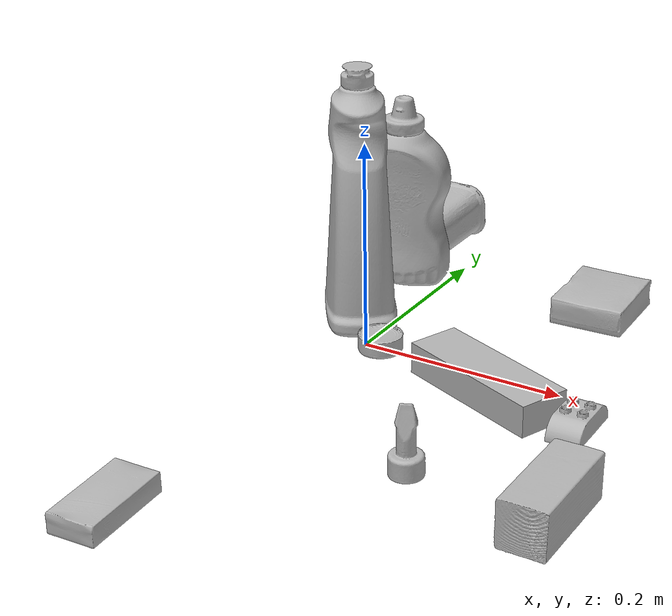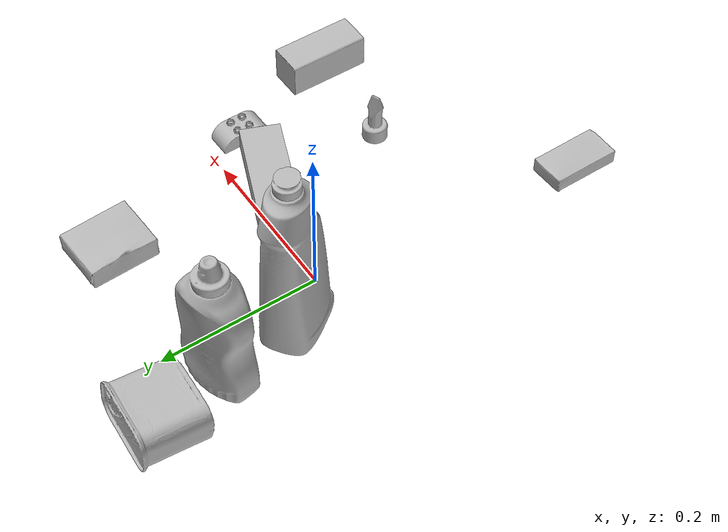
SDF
<sdf version="1.4">
  <world name="default">
    <light name="light1" type="point">
      <pose>0 0 1 0 0 0</pose>
      <diffuse>3 3 3 1</diffuse>
      <specular>3 3 3 1</specular>
    </light>
    <light name="light2" type="point">
      <pose>0 0.5 2 0 0 0</pose>
      <diffuse>1 1 1 1</diffuse>
      <specular>1 1 1 1</specular>
    </light>
    <light name="light3" type="point">
      <pose>0 0.5 2 0 0 0</pose>
      <diffuse>3 3 3 1</diffuse>
      <specular>3 3 3 1</specular>
    </light>
    <scene>
      <ambient>0.7 0.7 0.7</ambient>
    </scene>
    <model name="bottle1">
      <link name="link_bottle1">
        <collision name="default">
          <geometry>
            <mesh>
              <uri>model://bleach_cleanser/collision_meshes/collision.obj</uri>
              <scale>1.0 1.0 1.0</scale>
            </mesh>
          </geometry>
          <surface>
            <friction>
              <ode>
                <mu>0.5</mu>
                <mu2>0.5</mu2>
              </ode>
            </friction>
          <contact>
        <ode>
            <max_vel>0</max_vel>
            <min_depth>0.0001</min_depth>
            <kp>1e8</kp>
        </ode>
    </contact></surface>
        </collision>
        <visual name="default">
          <geometry>
            <mesh>
              <uri>model://bleach_cleanser/visual_meshes/visual.dae</uri>
              <scale>1.0 1.0 1.0</scale>
            </mesh>
          </geometry>
        </visual>
        <inertial>
          <mass>0.5324875712394714</mass>
          <pose>0.00012193183647468686 0.0037838825955986977 -0.024421609938144684 -0.07381669869164166 0.0004201168944593395 -0.0068750469260774934</pose>
          <inertia>
            <ixx>0.0025916947</ixx>
            <iyy>0.0024150796</iyy>
            <izz>0.00044311245</izz>
            <ixy>0</ixy>
            <ixz>0</ixz>
            <iyz>0</iyz>
          </inertia>
        </inertial>
      </link>
      <pose>-0.03623093292117119 0.04934060573577881 0.1257842481136322 -0.00020439661353079152 1.1290701192588707e-05 0.6515730391599606</pose>
    </model>
    <model name="bottle2">
      <link name="link_bottle2">
        <collision name="default">
          <geometry>
            <mesh>
              <uri>model://mustard_bottle/collision_meshes/collision.obj</uri>
              <scale>1.0 1.0 1.0</scale>
            </mesh>
          </geometry>
          <surface>
            <friction>
              <ode>
                <mu>0.5</mu>
                <mu2>0.5</mu2>
              </ode>
            </friction>
          <contact>
        <ode>
            <max_vel>0</max_vel>
            <min_depth>0.0001</min_depth>
            <kp>1e8</kp>
        </ode>
    </contact></surface>
        </collision>
        <visual name="default">
          <geometry>
            <mesh>
              <uri>model://mustard_bottle/visual_meshes/visual.dae</uri>
              <scale>1.0 1.0 1.0</scale>
            </mesh>
          </geometry>
        </visual>
        <inertial>
          <mass>0.7762566804885864</mass>
          <pose>0.0005032453336752951 -0.0001564739941386506 -0.01747579127550125 0.0004182320844136383 0.0009465775961192733 0.024853776391442105</pose>
          <inertia>
            <ixx>0.0021555587</ixx>
            <iyy>0.0018913207</iyy>
            <izz>0.00056809856</izz>
            <ixy>0</ixy>
            <ixz>0</ixz>
            <iyz>0</iyz>
          </inertia>
        </inertial>
      </link>
      <pose>-0.048158399760723114 0.1537797898054123 0.09583090245723724 -0.01205069078465861 -0.004889734431697513 -1.4052481622773982</pose>
    </model>
    <model name="toy1">
      <link name="link_toy1">
        <collision name="default">
          <geometry>
            <mesh>
              <uri>model://e_toy_airplane/collision_meshes/collision.obj</uri>
              <scale>1.0 1.0 1.0</scale>
            </mesh>
          </geometry>
          <surface>
            <friction>
              <ode>
                <mu>0.5</mu>
                <mu2>0.5</mu2>
              </ode>
            </friction>
          <contact>
        <ode>
            <max_vel>0</max_vel>
            <min_depth>0.0001</min_depth>
            <kp>1e8</kp>
        </ode>
    </contact></surface>
        </collision>
        <visual name="default">
          <geometry>
            <mesh>
              <uri>model://e_toy_airplane/visual_meshes/visual.dae</uri>
              <scale>1.0 1.0 1.0</scale>
            </mesh>
          </geometry>
        </visual>
        <inertial>
          <mass>0.01693064346909523</mass>
          <pose>0.00011740485206246376 -2.2482869098894298e-05 -0.011187203228473663 0.005518486263483037 0.009228306153066855 0.15041416456770357</pose>
          <inertia>
            <ixx>5.1674256e-06</ixx>
            <iyy>5.1145657e-06</iyy>
            <izz>1.5530146e-06</izz>
            <ixy>0</ixy>
            <ixz>0</ixz>
            <iyz>0</iyz>
          </inertia>
        </inertial>
      </link>
      <pose>0.1472022384405136 -0.1816169172525406 0.03321227431297302 7.083817927520239e-05 -8.828893297200718e-05 -1.334533470458842</pose>
    </model>
    <model name="toy2">
      <link name="link_toy2">
        <collision name="default">
          <geometry>
            <mesh>
              <uri>model://a_lego_duplo/collision_meshes/collision.obj</uri>
              <scale>1.0 1.0 1.0</scale>
            </mesh>
          </geometry>
          <surface>
            <friction>
              <ode>
                <mu>0.5</mu>
                <mu2>0.5</mu2>
              </ode>
            </friction>
          <contact>
        <ode>
            <max_vel>0</max_vel>
            <min_depth>0.0001</min_depth>
            <kp>1e8</kp>
        </ode>
    </contact></surface>
        </collision>
        <visual name="default">
          <geometry>
            <mesh>
              <uri>model://a_lego_duplo/visual_meshes/visual.dae</uri>
              <scale>1.0 1.0 1.0</scale>
            </mesh>
          </geometry>
        </visual>
        <inertial>
          <mass>0.026311658322811127</mass>
          <pose>-0.000113377594971098 0.00018517566786613315 0.0003692609607242048 -0.014117022075399962 -0.00012566465015892618 6.142856652531641e-05</pose>
          <inertia>
            <ixx>3.3733654e-06</ixx>
            <iyy>7.557078e-06</iyy>
            <izz>9.361117e-06</izz>
            <ixy>0</ixy>
            <ixz>0</ixz>
            <iyz>0</iyz>
          </inertia>
        </inertial>
      </link>
      <pose>0.23687879741191864 -0.04607357084751129 0.012111996300518513 3.423967200561823e-07 -3.3085039155211234e-07 -1.5477186544602526</pose>
    </model>
    <model name="can1">
      <link name="link_can1">
        <collision name="default">
          <geometry>
            <mesh>
              <uri>model://tuna_fish_can/collision_meshes/collision.obj</uri>
              <scale>0.5 0.5 0.5</scale>
            </mesh>
          </geometry>
          <surface>
            <friction>
              <ode>
                <mu>0.5</mu>
                <mu2>0.5</mu2>
              </ode>
            </friction>
          <contact>
        <ode>
            <max_vel>0</max_vel>
            <min_depth>0.0001</min_depth>
            <kp>1e8</kp>
        </ode>
    </contact></surface>
        </collision>
        <visual name="default">
          <geometry>
            <mesh>
              <uri>model://tuna_fish_can/visual_meshes/visual.dae</uri>
              <scale>0.5 0.5 0.5</scale>
            </mesh>
          </geometry>
        </visual>
        <inertial>
          <mass>0.025987863540649414</mass>
          <pose>-2.0361601855256595e-05 -7.256298886204604e-06 -0.0005269025568850338 -0.0017944787689317097 0.0001716279666079131 0.24054509142506303</pose>
          <inertia>
            <ixx>3.5135977e-06</ixx>
            <iyy>3.4989534e-06</iyy>
            <izz>6.0122675e-06</izz>
            <ixy>0</ixy>
            <ixz>0</ixz>
            <iyz>0</iyz>
          </inertia>
        </inertial>
      </link>
      <pose>0.016750920563936234 -0.0016015215078368783 0.008520000614225864 7.816324146958253e-08 3.894488132215556e-07 -0.31056095422682584</pose>
    </model>
    <model name="can2">
      <link name="link_can2">
        <collision name="default">
          <geometry>
            <mesh>
              <uri>model://potted_meat_can/collision_meshes/collision.obj</uri>
              <scale>1.0 1.0 1.0</scale>
            </mesh>
          </geometry>
          <surface>
            <friction>
              <ode>
                <mu>0.5</mu>
                <mu2>0.5</mu2>
              </ode>
            </friction>
          <contact>
        <ode>
            <max_vel>0</max_vel>
            <min_depth>0.0001</min_depth>
            <kp>1e8</kp>
        </ode>
    </contact></surface>
        </collision>
        <visual name="default">
          <geometry>
            <mesh>
              <uri>model://potted_meat_can/visual_meshes/visual.dae</uri>
              <scale>1.0 1.0 1.0</scale>
            </mesh>
          </geometry>
        </visual>
        <inertial>
          <mass>0.2732236087322235</mass>
          <pose>0.00022888141393195838 -5.989111741655506e-05 -0.0006367441383190453 -0.028093326615163196 -0.007232604646238421 0.015406262399643026</pose>
          <inertia>
            <ixx>0.0003514736</ixx>
            <iyy>0.00021354685</iyy>
            <izz>0.00025563012</izz>
            <ixy>0</ixy>
            <ixz>0</ixz>
            <iyz>0</iyz>
          </inertia>
        </inertial>
      </link>
      <pose>-0.07048416137695312 0.24077284336090088 0.028031298890709877 -0.6260749674474453 1.5144520549923526 0.8899440602118377</pose>
    </model>
    <model name="box1">
      <link name="link_box1">
        <collision name="default">
          <geometry>
            <mesh>
              <uri>model://gelatin_box/collision_meshes/collision.obj</uri>
              <scale>1.0 1.0 1.0</scale>
            </mesh>
          </geometry>
          <surface>
            <friction>
              <ode>
                <mu>0.5</mu>
                <mu2>0.5</mu2>
              </ode>
            </friction>
          <contact>
        <ode>
            <max_vel>0</max_vel>
            <min_depth>0.0001</min_depth>
            <kp>1e8</kp>
        </ode>
    </contact></surface>
        </collision>
        <visual name="default">
          <geometry>
            <mesh>
              <uri>model://gelatin_box/visual_meshes/visual.dae</uri>
              <scale>1.0 1.0 1.0</scale>
            </mesh>
          </geometry>
        </visual>
        <inertial>
          <mass>0.14974145591259003</mass>
          <pose>0.0004319618456065655 0.00011156871914863586 -0.0003640321083366871 -0.0010503719798216618 -0.004755819622564704 0.01644055760929568</pose>
          <inertia>
            <ixx>0.00010570526</ixx>
            <iyy>7.550471e-05</iyy>
            <izz>0.00016090693</izz>
            <ixy>0</ixy>
            <ixz>0</ixz>
            <iyz>0</iyz>
          </inertia>
        </inertial>
      </link>
      <pose>0.16442470252513885 0.17182911932468414 0.01516831386834383 0.0055963445491371885 -0.007303308411876089 -3.1028593774737048</pose>
    </model>
    <model name="box2">
      <link name="link_box2">
        <collision name="default">
          <geometry>
            <mesh>
              <uri>model://sugar_box/collision_meshes/collision.obj</uri>
              <scale>0.5 0.5 0.5</scale>
            </mesh>
          </geometry>
          <surface>
            <friction>
              <ode>
                <mu>0.5</mu>
                <mu2>0.5</mu2>
              </ode>
            </friction>
          <contact>
        <ode>
            <max_vel>0</max_vel>
            <min_depth>0.0001</min_depth>
            <kp>1e8</kp>
        </ode>
    </contact></surface>
        </collision>
        <visual name="default">
          <geometry>
            <mesh>
              <uri>model://sugar_box/visual_meshes/visual.dae</uri>
              <scale>0.5 0.5 0.5</scale>
            </mesh>
          </geometry>
        </visual>
        <inertial>
          <mass>0.07143953442573547</mass>
          <pose>0.0005171863595023751 1.924554817378521e-05 -0.00018182402709499002 -0.0004046263588767038 0.0010506634057764815 0.0026153785560837986</pose>
          <inertia>
            <ixx>1.4880804e-05</ixx>
            <iyy>4.8097805e-05</iyy>
            <izz>5.757883e-05</izz>
            <ixy>0</ixy>
            <ixz>0</ixz>
            <iyz>0</iyz>
          </inertia>
        </inertial>
      </link>
      <pose>-0.026304861530661583 -0.35010069608688354 0.011399311944842339 0.0007751189383029178 -0.023432537132467596 1.598877637946998</pose>
    </model>
    <model name="box3">
      <link name="link_box3">
        <collision name="default">
          <geometry>
            <mesh>
              <uri>model://jenga/collision_meshes/collision.obj</uri>
              <scale>1.0 1.0 1.0</scale>
            </mesh>
          </geometry>
          <surface>
            <friction>
              <ode>
                <mu>0.5</mu>
                <mu2>0.5</mu2>
              </ode>
            </friction>
          <contact>
        <ode>
            <max_vel>0</max_vel>
            <min_depth>0.0001</min_depth>
            <kp>1e8</kp>
        </ode>
    </contact></surface>
        </collision>
        <visual name="default">
          <geometry>
            <mesh>
              <uri>model://jenga/visual_meshes/visual.dae</uri>
              <scale>1.0 1.0 1.0</scale>
            </mesh>
          </geometry>
        </visual>
        <inertial>
          <mass>0.2564851939678192</mass>
          <pose>-2.502855807051674e-07 -0.00010250010382151231 -4.0923401684267446e-05 0.0 -7.342154049184251e-07 0.0</pose>
          <inertia>
            <ixx>7.097568e-05</ixx>
            <iyy>0.00048092927</iyy>
            <izz>0.0005134329</izz>
            <ixy>0</ixy>
            <ixz>0</ixz>
            <iyz>0</iyz>
          </inertia>
        </inertial>
      </link>
      <pose>0.14268989861011505 -0.0309017151594162 0.01499999687075615 -6.763109237137452e-09 2.3643393304677845e-09 2.7594340859924835</pose>
    </model>
    <model name="box4">
      <link name="link_box4">
        <collision name="default">
          <geometry>
            <mesh>
              <uri>model://wood_block/collision_meshes/collision.obj</uri>
              <scale>0.5 0.5 0.5</scale>
            </mesh>
          </geometry>
          <surface>
            <friction>
              <ode>
                <mu>0.5</mu>
                <mu2>0.5</mu2>
              </ode>
            </friction>
          <contact>
        <ode>
            <max_vel>0</max_vel>
            <min_depth>0.0001</min_depth>
            <kp>1e8</kp>
        </ode>
    </contact></surface>
        </collision>
        <visual name="default">
          <geometry>
            <mesh>
              <uri>model://wood_block/visual_meshes/visual.dae</uri>
              <scale>0.5 0.5 0.5</scale>
            </mesh>
          </geometry>
        </visual>
        <inertial>
          <mass>0.2543213665485382</mass>
          <pose>-2.906657982748584e-06 -0.000285404734313488 0.00013204291462898254 -0.05220794665887619 -0.0051926956484831775 -0.006861378561045436</pose>
          <inertia>
            <ixx>8.508011e-05</ixx>
            <iyy>0.00026876814</iyy>
            <izz>0.00026776275</izz>
            <ixy>0</ixy>
            <ixz>0</ixz>
            <iyz>0</iyz>
          </inertia>
        </inertial>
      </link>
      <pose>0.2778862416744232 -0.1884223222732544 0.0226292721927166 -0.005208613997361298 0.0057187753576764975 -1.5675833469894307</pose>
    </model>
  <physics type="ode">
      <max_contacts>50</max_contacts>
      <ode>
        <solver>
          <type>quick</type>
          <iters>75</iters>
        </solver>
        <constraints>
          <contact_max_correcting_vel>0</contact_max_correcting_vel>
          <contact_surface_layer>0</contact_surface_layer>
        </constraints>
      </ode>
    </physics></world>
</sdf>
